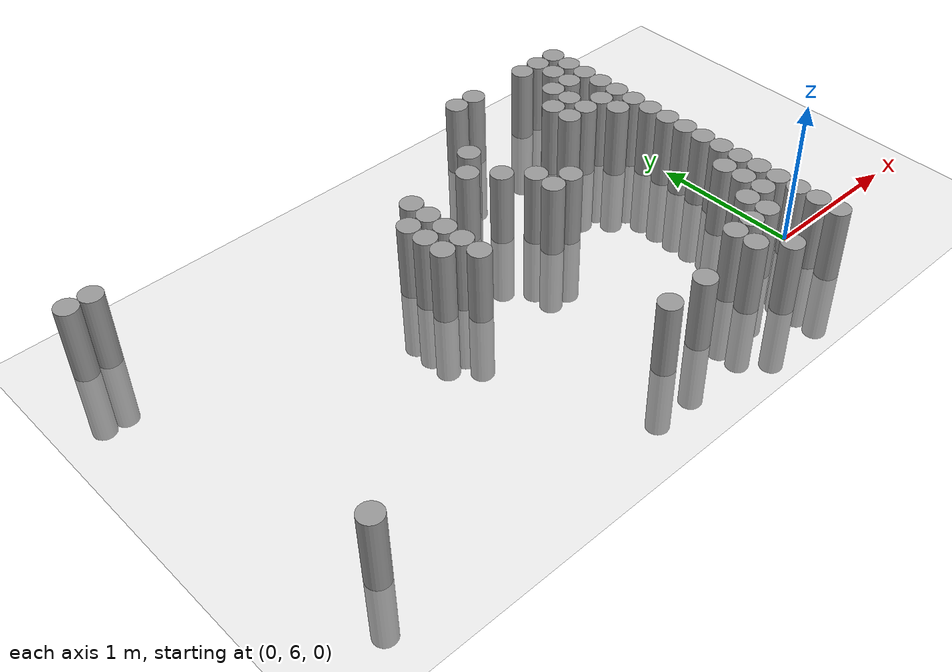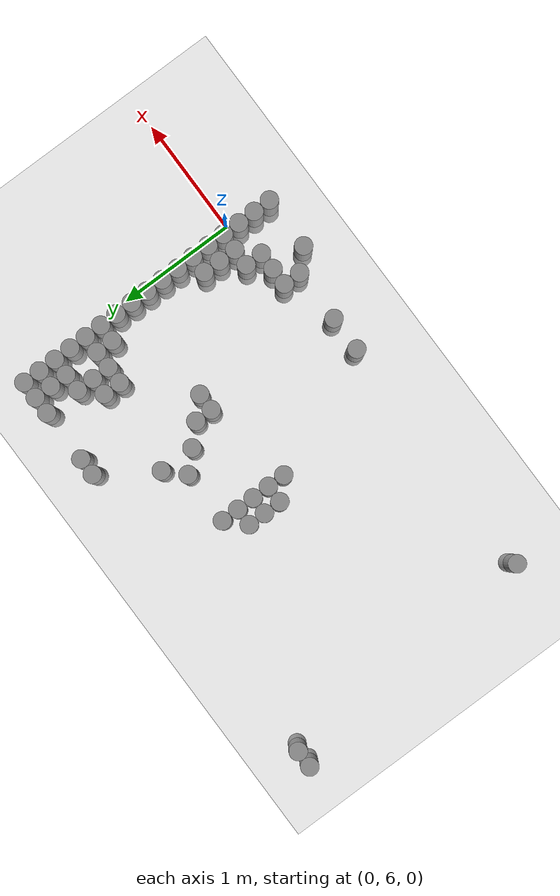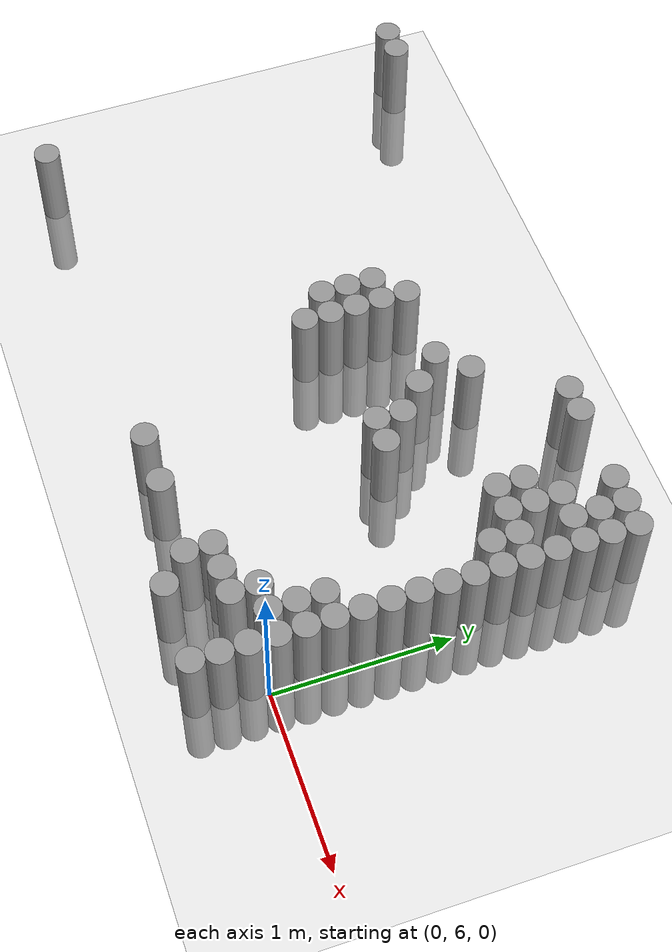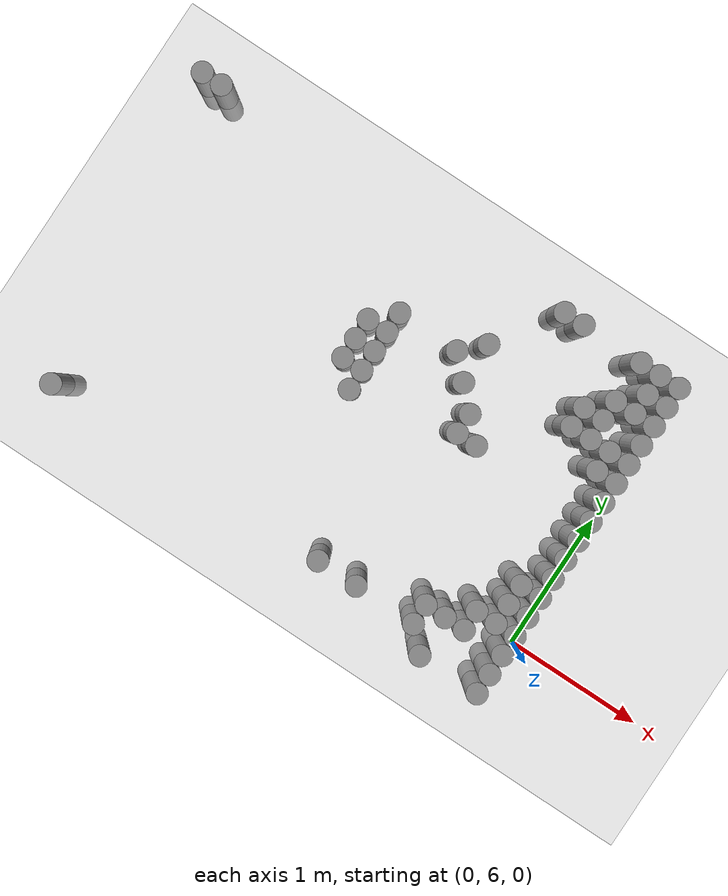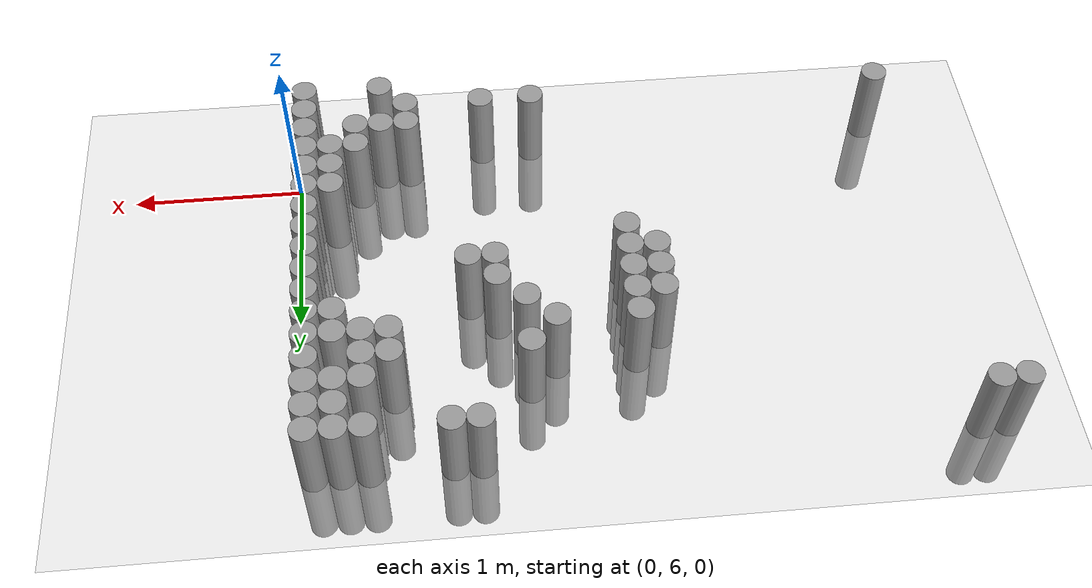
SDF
<sdf version="1.6">
 <world name="default">
  <model name="ground_plane">
   <static>1</static>
   <static>1</static>
   <link name="link">
    <collision name="collision">
     <geometry><plane><normal>0 0 1</normal><size>100 100</size></plane></geometry>
     <surface><friction><ode><mu>100</mu><mu2>50</mu2></ode></friction></surface>
    </collision>
    <visual name="visual">
     <cast_shadows>0</cast_shadows>
     <geometry><plane><normal>0 0 1</normal><size>100 100</size></plane></geometry>
     <material>
      <script><uri>file://media/materials/scripts/gazebo.material</uri><name>Gazebo/Grey</name></script>
     </material>
    </visual>
   </link>
  </model>
  <model name="unit_cylinder_159">
   <static>1</static>
   <pose>-3.825000 8.025000 0.000000 0.000000 0.000000 0.000000</pose>
   <link name="link">
    <inertial>
     <mass>1</mass>
     <inertia><ixx>0.145833</ixx><ixy>0</ixy><ixz>0</ixz><iyy>0.145833</iyy><iyz>0</iyz><izz>0.125</izz></inertia>
    </inertial>
    <collision name="collision">
     <geometry><cylinder><radius>0.075000</radius><length>1</length></cylinder></geometry>
    </collision>
    <visual name="visual">
     <geometry><cylinder><radius>0.075000</radius><length>1</length></cylinder></geometry>
     <material>
      <script><name>Gazebo/Grey</name><uri>file://media/materials/scripts/gazebo.material</uri></script>
     </material>
    </visual>
   </link>
  </model>
  <model name="unit_cylinder_165">
   <static>1</static>
   <pose>-3.675000 8.025000 0.000000 0.000000 0.000000 0.000000</pose>
   <link name="link">
    <inertial>
     <mass>1</mass>
     <inertia><ixx>0.145833</ixx><ixy>0</ixy><ixz>0</ixz><iyy>0.145833</iyy><iyz>0</iyz><izz>0.125</izz></inertia>
    </inertial>
    <collision name="collision">
     <geometry><cylinder><radius>0.075000</radius><length>1</length></cylinder></geometry>
    </collision>
    <visual name="visual">
     <geometry><cylinder><radius>0.075000</radius><length>1</length></cylinder></geometry>
     <material>
      <script><name>Gazebo/Grey</name><uri>file://media/materials/scripts/gazebo.material</uri></script>
     </material>
    </visual>
   </link>
  </model>
  <model name="unit_cylinder_172">
   <static>1</static>
   <pose>-3.525000 5.775000 0.000000 0.000000 0.000000 0.000000</pose>
   <link name="link">
    <inertial>
     <mass>1</mass>
     <inertia><ixx>0.145833</ixx><ixy>0</ixy><ixz>0</ixz><iyy>0.145833</iyy><iyz>0</iyz><izz>0.125</izz></inertia>
    </inertial>
    <collision name="collision">
     <geometry><cylinder><radius>0.075000</radius><length>1</length></cylinder></geometry>
    </collision>
    <visual name="visual">
     <geometry><cylinder><radius>0.075000</radius><length>1</length></cylinder></geometry>
     <material>
      <script><name>Gazebo/Grey</name><uri>file://media/materials/scripts/gazebo.material</uri></script>
     </material>
    </visual>
   </link>
  </model>
  <model name="unit_cylinder_193">
   <static>1</static>
   <pose>-2.025000 6.975000 0.000000 0.000000 0.000000 0.000000</pose>
   <link name="link">
    <inertial>
     <mass>1</mass>
     <inertia><ixx>0.145833</ixx><ixy>0</ixy><ixz>0</ixz><iyy>0.145833</iyy><iyz>0</iyz><izz>0.125</izz></inertia>
    </inertial>
    <collision name="collision">
     <geometry><cylinder><radius>0.075000</radius><length>1</length></cylinder></geometry>
    </collision>
    <visual name="visual">
     <geometry><cylinder><radius>0.075000</radius><length>1</length></cylinder></geometry>
     <material>
      <script><name>Gazebo/Grey</name><uri>file://media/materials/scripts/gazebo.material</uri></script>
     </material>
    </visual>
   </link>
  </model>
  <model name="unit_cylinder_194">
   <static>1</static>
   <pose>-2.025000 7.125000 0.000000 0.000000 0.000000 0.000000</pose>
   <link name="link">
    <inertial>
     <mass>1</mass>
     <inertia><ixx>0.145833</ixx><ixy>0</ixy><ixz>0</ixz><iyy>0.145833</iyy><iyz>0</iyz><izz>0.125</izz></inertia>
    </inertial>
    <collision name="collision">
     <geometry><cylinder><radius>0.075000</radius><length>1</length></cylinder></geometry>
    </collision>
    <visual name="visual">
     <geometry><cylinder><radius>0.075000</radius><length>1</length></cylinder></geometry>
     <material>
      <script><name>Gazebo/Grey</name><uri>file://media/materials/scripts/gazebo.material</uri></script>
     </material>
    </visual>
   </link>
  </model>
  <model name="unit_cylinder_195">
   <static>1</static>
   <pose>-2.025000 7.275000 0.000000 0.000000 0.000000 0.000000</pose>
   <link name="link">
    <inertial>
     <mass>1</mass>
     <inertia><ixx>0.145833</ixx><ixy>0</ixy><ixz>0</ixz><iyy>0.145833</iyy><iyz>0</iyz><izz>0.125</izz></inertia>
    </inertial>
    <collision name="collision">
     <geometry><cylinder><radius>0.075000</radius><length>1</length></cylinder></geometry>
    </collision>
    <visual name="visual">
     <geometry><cylinder><radius>0.075000</radius><length>1</length></cylinder></geometry>
     <material>
      <script><name>Gazebo/Grey</name><uri>file://media/materials/scripts/gazebo.material</uri></script>
     </material>
    </visual>
   </link>
  </model>
  <model name="unit_cylinder_196">
   <static>1</static>
   <pose>-1.875000 6.825000 0.000000 0.000000 0.000000 0.000000</pose>
   <link name="link">
    <inertial>
     <mass>1</mass>
     <inertia><ixx>0.145833</ixx><ixy>0</ixy><ixz>0</ixz><iyy>0.145833</iyy><iyz>0</iyz><izz>0.125</izz></inertia>
    </inertial>
    <collision name="collision">
     <geometry><cylinder><radius>0.075000</radius><length>1</length></cylinder></geometry>
    </collision>
    <visual name="visual">
     <geometry><cylinder><radius>0.075000</radius><length>1</length></cylinder></geometry>
     <material>
      <script><name>Gazebo/Grey</name><uri>file://media/materials/scripts/gazebo.material</uri></script>
     </material>
    </visual>
   </link>
  </model>
  <model name="unit_cylinder_197">
   <static>1</static>
   <pose>-1.875000 6.975000 0.000000 0.000000 0.000000 0.000000</pose>
   <link name="link">
    <inertial>
     <mass>1</mass>
     <inertia><ixx>0.145833</ixx><ixy>0</ixy><ixz>0</ixz><iyy>0.145833</iyy><iyz>0</iyz><izz>0.125</izz></inertia>
    </inertial>
    <collision name="collision">
     <geometry><cylinder><radius>0.075000</radius><length>1</length></cylinder></geometry>
    </collision>
    <visual name="visual">
     <geometry><cylinder><radius>0.075000</radius><length>1</length></cylinder></geometry>
     <material>
      <script><name>Gazebo/Grey</name><uri>file://media/materials/scripts/gazebo.material</uri></script>
     </material>
    </visual>
   </link>
  </model>
  <model name="unit_cylinder_198">
   <static>1</static>
   <pose>-1.875000 7.125000 0.000000 0.000000 0.000000 0.000000</pose>
   <link name="link">
    <inertial>
     <mass>1</mass>
     <inertia><ixx>0.145833</ixx><ixy>0</ixy><ixz>0</ixz><iyy>0.145833</iyy><iyz>0</iyz><izz>0.125</izz></inertia>
    </inertial>
    <collision name="collision">
     <geometry><cylinder><radius>0.075000</radius><length>1</length></cylinder></geometry>
    </collision>
    <visual name="visual">
     <geometry><cylinder><radius>0.075000</radius><length>1</length></cylinder></geometry>
     <material>
      <script><name>Gazebo/Grey</name><uri>file://media/materials/scripts/gazebo.material</uri></script>
     </material>
    </visual>
   </link>
  </model>
  <model name="unit_cylinder_199">
   <static>1</static>
   <pose>-1.875000 7.275000 0.000000 0.000000 0.000000 0.000000</pose>
   <link name="link">
    <inertial>
     <mass>1</mass>
     <inertia><ixx>0.145833</ixx><ixy>0</ixy><ixz>0</ixz><iyy>0.145833</iyy><iyz>0</iyz><izz>0.125</izz></inertia>
    </inertial>
    <collision name="collision">
     <geometry><cylinder><radius>0.075000</radius><length>1</length></cylinder></geometry>
    </collision>
    <visual name="visual">
     <geometry><cylinder><radius>0.075000</radius><length>1</length></cylinder></geometry>
     <material>
      <script><name>Gazebo/Grey</name><uri>file://media/materials/scripts/gazebo.material</uri></script>
     </material>
    </visual>
   </link>
  </model>
  <model name="unit_cylinder_200">
   <static>1</static>
   <pose>-1.875000 7.425000 0.000000 0.000000 0.000000 0.000000</pose>
   <link name="link">
    <inertial>
     <mass>1</mass>
     <inertia><ixx>0.145833</ixx><ixy>0</ixy><ixz>0</ixz><iyy>0.145833</iyy><iyz>0</iyz><izz>0.125</izz></inertia>
    </inertial>
    <collision name="collision">
     <geometry><cylinder><radius>0.075000</radius><length>1</length></cylinder></geometry>
    </collision>
    <visual name="visual">
     <geometry><cylinder><radius>0.075000</radius><length>1</length></cylinder></geometry>
     <material>
      <script><name>Gazebo/Grey</name><uri>file://media/materials/scripts/gazebo.material</uri></script>
     </material>
    </visual>
   </link>
  </model>
  <model name="unit_cylinder_203">
   <static>1</static>
   <pose>-1.425000 5.775000 0.000000 0.000000 0.000000 0.000000</pose>
   <link name="link">
    <inertial>
     <mass>1</mass>
     <inertia><ixx>0.145833</ixx><ixy>0</ixy><ixz>0</ixz><iyy>0.145833</iyy><iyz>0</iyz><izz>0.125</izz></inertia>
    </inertial>
    <collision name="collision">
     <geometry><cylinder><radius>0.075000</radius><length>1</length></cylinder></geometry>
    </collision>
    <visual name="visual">
     <geometry><cylinder><radius>0.075000</radius><length>1</length></cylinder></geometry>
     <material>
      <script><name>Gazebo/Grey</name><uri>file://media/materials/scripts/gazebo.material</uri></script>
     </material>
    </visual>
   </link>
  </model>
  <model name="unit_cylinder_204">
   <static>1</static>
   <pose>-1.425000 7.425000 0.000000 0.000000 0.000000 0.000000</pose>
   <link name="link">
    <inertial>
     <mass>1</mass>
     <inertia><ixx>0.145833</ixx><ixy>0</ixy><ixz>0</ixz><iyy>0.145833</iyy><iyz>0</iyz><izz>0.125</izz></inertia>
    </inertial>
    <collision name="collision">
     <geometry><cylinder><radius>0.075000</radius><length>1</length></cylinder></geometry>
    </collision>
    <visual name="visual">
     <geometry><cylinder><radius>0.075000</radius><length>1</length></cylinder></geometry>
     <material>
      <script><name>Gazebo/Grey</name><uri>file://media/materials/scripts/gazebo.material</uri></script>
     </material>
    </visual>
   </link>
  </model>
  <model name="unit_cylinder_206">
   <static>1</static>
   <pose>-1.275000 7.275000 0.000000 0.000000 0.000000 0.000000</pose>
   <link name="link">
    <inertial>
     <mass>1</mass>
     <inertia><ixx>0.145833</ixx><ixy>0</ixy><ixz>0</ixz><iyy>0.145833</iyy><iyz>0</iyz><izz>0.125</izz></inertia>
    </inertial>
    <collision name="collision">
     <geometry><cylinder><radius>0.075000</radius><length>1</length></cylinder></geometry>
    </collision>
    <visual name="visual">
     <geometry><cylinder><radius>0.075000</radius><length>1</length></cylinder></geometry>
     <material>
      <script><name>Gazebo/Grey</name><uri>file://media/materials/scripts/gazebo.material</uri></script>
     </material>
    </visual>
   </link>
  </model>
  <model name="unit_cylinder_207">
   <static>1</static>
   <pose>-1.275000 7.575000 0.000000 0.000000 0.000000 0.000000</pose>
   <link name="link">
    <inertial>
     <mass>1</mass>
     <inertia><ixx>0.145833</ixx><ixy>0</ixy><ixz>0</ixz><iyy>0.145833</iyy><iyz>0</iyz><izz>0.125</izz></inertia>
    </inertial>
    <collision name="collision">
     <geometry><cylinder><radius>0.075000</radius><length>1</length></cylinder></geometry>
    </collision>
    <visual name="visual">
     <geometry><cylinder><radius>0.075000</radius><length>1</length></cylinder></geometry>
     <material>
      <script><name>Gazebo/Grey</name><uri>file://media/materials/scripts/gazebo.material</uri></script>
     </material>
    </visual>
   </link>
  </model>
  <model name="unit_cylinder_208">
   <static>1</static>
   <pose>-1.125000 5.775000 0.000000 0.000000 0.000000 0.000000</pose>
   <link name="link">
    <inertial>
     <mass>1</mass>
     <inertia><ixx>0.145833</ixx><ixy>0</ixy><ixz>0</ixz><iyy>0.145833</iyy><iyz>0</iyz><izz>0.125</izz></inertia>
    </inertial>
    <collision name="collision">
     <geometry><cylinder><radius>0.075000</radius><length>1</length></cylinder></geometry>
    </collision>
    <visual name="visual">
     <geometry><cylinder><radius>0.075000</radius><length>1</length></cylinder></geometry>
     <material>
      <script><name>Gazebo/Grey</name><uri>file://media/materials/scripts/gazebo.material</uri></script>
     </material>
    </visual>
   </link>
  </model>
  <model name="unit_cylinder_209">
   <static>1</static>
   <pose>-1.125000 6.975000 0.000000 0.000000 0.000000 0.000000</pose>
   <link name="link">
    <inertial>
     <mass>1</mass>
     <inertia><ixx>0.145833</ixx><ixy>0</ixy><ixz>0</ixz><iyy>0.145833</iyy><iyz>0</iyz><izz>0.125</izz></inertia>
    </inertial>
    <collision name="collision">
     <geometry><cylinder><radius>0.075000</radius><length>1</length></cylinder></geometry>
    </collision>
    <visual name="visual">
     <geometry><cylinder><radius>0.075000</radius><length>1</length></cylinder></geometry>
     <material>
      <script><name>Gazebo/Grey</name><uri>file://media/materials/scripts/gazebo.material</uri></script>
     </material>
    </visual>
   </link>
  </model>
  <model name="unit_cylinder_210">
   <static>1</static>
   <pose>-1.125000 7.125000 0.000000 0.000000 0.000000 0.000000</pose>
   <link name="link">
    <inertial>
     <mass>1</mass>
     <inertia><ixx>0.145833</ixx><ixy>0</ixy><ixz>0</ixz><iyy>0.145833</iyy><iyz>0</iyz><izz>0.125</izz></inertia>
    </inertial>
    <collision name="collision">
     <geometry><cylinder><radius>0.075000</radius><length>1</length></cylinder></geometry>
    </collision>
    <visual name="visual">
     <geometry><cylinder><radius>0.075000</radius><length>1</length></cylinder></geometry>
     <material>
      <script><name>Gazebo/Grey</name><uri>file://media/materials/scripts/gazebo.material</uri></script>
     </material>
    </visual>
   </link>
  </model>
  <model name="unit_cylinder_213">
   <static>1</static>
   <pose>-0.975000 6.975000 0.000000 0.000000 0.000000 0.000000</pose>
   <link name="link">
    <inertial>
     <mass>1</mass>
     <inertia><ixx>0.145833</ixx><ixy>0</ixy><ixz>0</ixz><iyy>0.145833</iyy><iyz>0</iyz><izz>0.125</izz></inertia>
    </inertial>
    <collision name="collision">
     <geometry><cylinder><radius>0.075000</radius><length>1</length></cylinder></geometry>
    </collision>
    <visual name="visual">
     <geometry><cylinder><radius>0.075000</radius><length>1</length></cylinder></geometry>
     <material>
      <script><name>Gazebo/Grey</name><uri>file://media/materials/scripts/gazebo.material</uri></script>
     </material>
    </visual>
   </link>
  </model>
  <model name="unit_cylinder_214">
   <static>1</static>
   <pose>-0.975000 8.025000 0.000000 0.000000 0.000000 0.000000</pose>
   <link name="link">
    <inertial>
     <mass>1</mass>
     <inertia><ixx>0.145833</ixx><ixy>0</ixy><ixz>0</ixz><iyy>0.145833</iyy><iyz>0</iyz><izz>0.125</izz></inertia>
    </inertial>
    <collision name="collision">
     <geometry><cylinder><radius>0.075000</radius><length>1</length></cylinder></geometry>
    </collision>
    <visual name="visual">
     <geometry><cylinder><radius>0.075000</radius><length>1</length></cylinder></geometry>
     <material>
      <script><name>Gazebo/Grey</name><uri>file://media/materials/scripts/gazebo.material</uri></script>
     </material>
    </visual>
   </link>
  </model>
  <model name="unit_cylinder_217">
   <static>1</static>
   <pose>-0.825000 8.025000 0.000000 0.000000 0.000000 0.000000</pose>
   <link name="link">
    <inertial>
     <mass>1</mass>
     <inertia><ixx>0.145833</ixx><ixy>0</ixy><ixz>0</ixz><iyy>0.145833</iyy><iyz>0</iyz><izz>0.125</izz></inertia>
    </inertial>
    <collision name="collision">
     <geometry><cylinder><radius>0.075000</radius><length>1</length></cylinder></geometry>
    </collision>
    <visual name="visual">
     <geometry><cylinder><radius>0.075000</radius><length>1</length></cylinder></geometry>
     <material>
      <script><name>Gazebo/Grey</name><uri>file://media/materials/scripts/gazebo.material</uri></script>
     </material>
    </visual>
   </link>
  </model>
  <model name="unit_cylinder_220">
   <static>1</static>
   <pose>-0.675000 5.775000 0.000000 0.000000 0.000000 0.000000</pose>
   <link name="link">
    <inertial>
     <mass>1</mass>
     <inertia><ixx>0.145833</ixx><ixy>0</ixy><ixz>0</ixz><iyy>0.145833</iyy><iyz>0</iyz><izz>0.125</izz></inertia>
    </inertial>
    <collision name="collision">
     <geometry><cylinder><radius>0.075000</radius><length>1</length></cylinder></geometry>
    </collision>
    <visual name="visual">
     <geometry><cylinder><radius>0.075000</radius><length>1</length></cylinder></geometry>
     <material>
      <script><name>Gazebo/Grey</name><uri>file://media/materials/scripts/gazebo.material</uri></script>
     </material>
    </visual>
   </link>
  </model>
  <model name="unit_cylinder_221">
   <static>1</static>
   <pose>-0.675000 5.925000 0.000000 0.000000 0.000000 0.000000</pose>
   <link name="link">
    <inertial>
     <mass>1</mass>
     <inertia><ixx>0.145833</ixx><ixy>0</ixy><ixz>0</ixz><iyy>0.145833</iyy><iyz>0</iyz><izz>0.125</izz></inertia>
    </inertial>
    <collision name="collision">
     <geometry><cylinder><radius>0.075000</radius><length>1</length></cylinder></geometry>
    </collision>
    <visual name="visual">
     <geometry><cylinder><radius>0.075000</radius><length>1</length></cylinder></geometry>
     <material>
      <script><name>Gazebo/Grey</name><uri>file://media/materials/scripts/gazebo.material</uri></script>
     </material>
    </visual>
   </link>
  </model>
  <model name="unit_cylinder_227">
   <static>1</static>
   <pose>-0.525000 5.625000 0.000000 0.000000 0.000000 0.000000</pose>
   <link name="link">
    <inertial>
     <mass>1</mass>
     <inertia><ixx>0.145833</ixx><ixy>0</ixy><ixz>0</ixz><iyy>0.145833</iyy><iyz>0</iyz><izz>0.125</izz></inertia>
    </inertial>
    <collision name="collision">
     <geometry><cylinder><radius>0.075000</radius><length>1</length></cylinder></geometry>
    </collision>
    <visual name="visual">
     <geometry><cylinder><radius>0.075000</radius><length>1</length></cylinder></geometry>
     <material>
      <script><name>Gazebo/Grey</name><uri>file://media/materials/scripts/gazebo.material</uri></script>
     </material>
    </visual>
   </link>
  </model>
  <model name="unit_cylinder_228">
   <static>1</static>
   <pose>-0.525000 5.925000 0.000000 0.000000 0.000000 0.000000</pose>
   <link name="link">
    <inertial>
     <mass>1</mass>
     <inertia><ixx>0.145833</ixx><ixy>0</ixy><ixz>0</ixz><iyy>0.145833</iyy><iyz>0</iyz><izz>0.125</izz></inertia>
    </inertial>
    <collision name="collision">
     <geometry><cylinder><radius>0.075000</radius><length>1</length></cylinder></geometry>
    </collision>
    <visual name="visual">
     <geometry><cylinder><radius>0.075000</radius><length>1</length></cylinder></geometry>
     <material>
      <script><name>Gazebo/Grey</name><uri>file://media/materials/scripts/gazebo.material</uri></script>
     </material>
    </visual>
   </link>
  </model>
  <model name="unit_cylinder_229">
   <static>1</static>
   <pose>-0.525000 7.425000 0.000000 0.000000 0.000000 0.000000</pose>
   <link name="link">
    <inertial>
     <mass>1</mass>
     <inertia><ixx>0.145833</ixx><ixy>0</ixy><ixz>0</ixz><iyy>0.145833</iyy><iyz>0</iyz><izz>0.125</izz></inertia>
    </inertial>
    <collision name="collision">
     <geometry><cylinder><radius>0.075000</radius><length>1</length></cylinder></geometry>
    </collision>
    <visual name="visual">
     <geometry><cylinder><radius>0.075000</radius><length>1</length></cylinder></geometry>
     <material>
      <script><name>Gazebo/Grey</name><uri>file://media/materials/scripts/gazebo.material</uri></script>
     </material>
    </visual>
   </link>
  </model>
  <model name="unit_cylinder_230">
   <static>1</static>
   <pose>-0.525000 7.575000 0.000000 0.000000 0.000000 0.000000</pose>
   <link name="link">
    <inertial>
     <mass>1</mass>
     <inertia><ixx>0.145833</ixx><ixy>0</ixy><ixz>0</ixz><iyy>0.145833</iyy><iyz>0</iyz><izz>0.125</izz></inertia>
    </inertial>
    <collision name="collision">
     <geometry><cylinder><radius>0.075000</radius><length>1</length></cylinder></geometry>
    </collision>
    <visual name="visual">
     <geometry><cylinder><radius>0.075000</radius><length>1</length></cylinder></geometry>
     <material>
      <script><name>Gazebo/Grey</name><uri>file://media/materials/scripts/gazebo.material</uri></script>
     </material>
    </visual>
   </link>
  </model>
  <model name="unit_cylinder_236">
   <static>1</static>
   <pose>-0.375000 5.925000 0.000000 0.000000 0.000000 0.000000</pose>
   <link name="link">
    <inertial>
     <mass>1</mass>
     <inertia><ixx>0.145833</ixx><ixy>0</ixy><ixz>0</ixz><iyy>0.145833</iyy><iyz>0</iyz><izz>0.125</izz></inertia>
    </inertial>
    <collision name="collision">
     <geometry><cylinder><radius>0.075000</radius><length>1</length></cylinder></geometry>
    </collision>
    <visual name="visual">
     <geometry><cylinder><radius>0.075000</radius><length>1</length></cylinder></geometry>
     <material>
      <script><name>Gazebo/Grey</name><uri>file://media/materials/scripts/gazebo.material</uri></script>
     </material>
    </visual>
   </link>
  </model>
  <model name="unit_cylinder_237">
   <static>1</static>
   <pose>-0.375000 6.075000 0.000000 0.000000 0.000000 0.000000</pose>
   <link name="link">
    <inertial>
     <mass>1</mass>
     <inertia><ixx>0.145833</ixx><ixy>0</ixy><ixz>0</ixz><iyy>0.145833</iyy><iyz>0</iyz><izz>0.125</izz></inertia>
    </inertial>
    <collision name="collision">
     <geometry><cylinder><radius>0.075000</radius><length>1</length></cylinder></geometry>
    </collision>
    <visual name="visual">
     <geometry><cylinder><radius>0.075000</radius><length>1</length></cylinder></geometry>
     <material>
      <script><name>Gazebo/Grey</name><uri>file://media/materials/scripts/gazebo.material</uri></script>
     </material>
    </visual>
   </link>
  </model>
  <model name="unit_cylinder_238">
   <static>1</static>
   <pose>-0.375000 7.425000 0.000000 0.000000 0.000000 0.000000</pose>
   <link name="link">
    <inertial>
     <mass>1</mass>
     <inertia><ixx>0.145833</ixx><ixy>0</ixy><ixz>0</ixz><iyy>0.145833</iyy><iyz>0</iyz><izz>0.125</izz></inertia>
    </inertial>
    <collision name="collision">
     <geometry><cylinder><radius>0.075000</radius><length>1</length></cylinder></geometry>
    </collision>
    <visual name="visual">
     <geometry><cylinder><radius>0.075000</radius><length>1</length></cylinder></geometry>
     <material>
      <script><name>Gazebo/Grey</name><uri>file://media/materials/scripts/gazebo.material</uri></script>
     </material>
    </visual>
   </link>
  </model>
  <model name="unit_cylinder_239">
   <static>1</static>
   <pose>-0.375000 7.575000 0.000000 0.000000 0.000000 0.000000</pose>
   <link name="link">
    <inertial>
     <mass>1</mass>
     <inertia><ixx>0.145833</ixx><ixy>0</ixy><ixz>0</ixz><iyy>0.145833</iyy><iyz>0</iyz><izz>0.125</izz></inertia>
    </inertial>
    <collision name="collision">
     <geometry><cylinder><radius>0.075000</radius><length>1</length></cylinder></geometry>
    </collision>
    <visual name="visual">
     <geometry><cylinder><radius>0.075000</radius><length>1</length></cylinder></geometry>
     <material>
      <script><name>Gazebo/Grey</name><uri>file://media/materials/scripts/gazebo.material</uri></script>
     </material>
    </visual>
   </link>
  </model>
  <model name="unit_cylinder_240">
   <static>1</static>
   <pose>-0.375000 7.725000 0.000000 0.000000 0.000000 0.000000</pose>
   <link name="link">
    <inertial>
     <mass>1</mass>
     <inertia><ixx>0.145833</ixx><ixy>0</ixy><ixz>0</ixz><iyy>0.145833</iyy><iyz>0</iyz><izz>0.125</izz></inertia>
    </inertial>
    <collision name="collision">
     <geometry><cylinder><radius>0.075000</radius><length>1</length></cylinder></geometry>
    </collision>
    <visual name="visual">
     <geometry><cylinder><radius>0.075000</radius><length>1</length></cylinder></geometry>
     <material>
      <script><name>Gazebo/Grey</name><uri>file://media/materials/scripts/gazebo.material</uri></script>
     </material>
    </visual>
   </link>
  </model>
  <model name="unit_cylinder_241">
   <static>1</static>
   <pose>-0.375000 8.025000 0.000000 0.000000 0.000000 0.000000</pose>
   <link name="link">
    <inertial>
     <mass>1</mass>
     <inertia><ixx>0.145833</ixx><ixy>0</ixy><ixz>0</ixz><iyy>0.145833</iyy><iyz>0</iyz><izz>0.125</izz></inertia>
    </inertial>
    <collision name="collision">
     <geometry><cylinder><radius>0.075000</radius><length>1</length></cylinder></geometry>
    </collision>
    <visual name="visual">
     <geometry><cylinder><radius>0.075000</radius><length>1</length></cylinder></geometry>
     <material>
      <script><name>Gazebo/Grey</name><uri>file://media/materials/scripts/gazebo.material</uri></script>
     </material>
    </visual>
   </link>
  </model>
  <model name="unit_cylinder_252">
   <static>1</static>
   <pose>-0.225000 6.075000 0.000000 0.000000 0.000000 0.000000</pose>
   <link name="link">
    <inertial>
     <mass>1</mass>
     <inertia><ixx>0.145833</ixx><ixy>0</ixy><ixz>0</ixz><iyy>0.145833</iyy><iyz>0</iyz><izz>0.125</izz></inertia>
    </inertial>
    <collision name="collision">
     <geometry><cylinder><radius>0.075000</radius><length>1</length></cylinder></geometry>
    </collision>
    <visual name="visual">
     <geometry><cylinder><radius>0.075000</radius><length>1</length></cylinder></geometry>
     <material>
      <script><name>Gazebo/Grey</name><uri>file://media/materials/scripts/gazebo.material</uri></script>
     </material>
    </visual>
   </link>
  </model>
  <model name="unit_cylinder_253">
   <static>1</static>
   <pose>-0.225000 6.225000 0.000000 0.000000 0.000000 0.000000</pose>
   <link name="link">
    <inertial>
     <mass>1</mass>
     <inertia><ixx>0.145833</ixx><ixy>0</ixy><ixz>0</ixz><iyy>0.145833</iyy><iyz>0</iyz><izz>0.125</izz></inertia>
    </inertial>
    <collision name="collision">
     <geometry><cylinder><radius>0.075000</radius><length>1</length></cylinder></geometry>
    </collision>
    <visual name="visual">
     <geometry><cylinder><radius>0.075000</radius><length>1</length></cylinder></geometry>
     <material>
      <script><name>Gazebo/Grey</name><uri>file://media/materials/scripts/gazebo.material</uri></script>
     </material>
    </visual>
   </link>
  </model>
  <model name="unit_cylinder_254">
   <static>1</static>
   <pose>-0.225000 6.375000 0.000000 0.000000 0.000000 0.000000</pose>
   <link name="link">
    <inertial>
     <mass>1</mass>
     <inertia><ixx>0.145833</ixx><ixy>0</ixy><ixz>0</ixz><iyy>0.145833</iyy><iyz>0</iyz><izz>0.125</izz></inertia>
    </inertial>
    <collision name="collision">
     <geometry><cylinder><radius>0.075000</radius><length>1</length></cylinder></geometry>
    </collision>
    <visual name="visual">
     <geometry><cylinder><radius>0.075000</radius><length>1</length></cylinder></geometry>
     <material>
      <script><name>Gazebo/Grey</name><uri>file://media/materials/scripts/gazebo.material</uri></script>
     </material>
    </visual>
   </link>
  </model>
  <model name="unit_cylinder_255">
   <static>1</static>
   <pose>-0.225000 7.275000 0.000000 0.000000 0.000000 0.000000</pose>
   <link name="link">
    <inertial>
     <mass>1</mass>
     <inertia><ixx>0.145833</ixx><ixy>0</ixy><ixz>0</ixz><iyy>0.145833</iyy><iyz>0</iyz><izz>0.125</izz></inertia>
    </inertial>
    <collision name="collision">
     <geometry><cylinder><radius>0.075000</radius><length>1</length></cylinder></geometry>
    </collision>
    <visual name="visual">
     <geometry><cylinder><radius>0.075000</radius><length>1</length></cylinder></geometry>
     <material>
      <script><name>Gazebo/Grey</name><uri>file://media/materials/scripts/gazebo.material</uri></script>
     </material>
    </visual>
   </link>
  </model>
  <model name="unit_cylinder_256">
   <static>1</static>
   <pose>-0.225000 7.425000 0.000000 0.000000 0.000000 0.000000</pose>
   <link name="link">
    <inertial>
     <mass>1</mass>
     <inertia><ixx>0.145833</ixx><ixy>0</ixy><ixz>0</ixz><iyy>0.145833</iyy><iyz>0</iyz><izz>0.125</izz></inertia>
    </inertial>
    <collision name="collision">
     <geometry><cylinder><radius>0.075000</radius><length>1</length></cylinder></geometry>
    </collision>
    <visual name="visual">
     <geometry><cylinder><radius>0.075000</radius><length>1</length></cylinder></geometry>
     <material>
      <script><name>Gazebo/Grey</name><uri>file://media/materials/scripts/gazebo.material</uri></script>
     </material>
    </visual>
   </link>
  </model>
  <model name="unit_cylinder_257">
   <static>1</static>
   <pose>-0.225000 7.725000 0.000000 0.000000 0.000000 0.000000</pose>
   <link name="link">
    <inertial>
     <mass>1</mass>
     <inertia><ixx>0.145833</ixx><ixy>0</ixy><ixz>0</ixz><iyy>0.145833</iyy><iyz>0</iyz><izz>0.125</izz></inertia>
    </inertial>
    <collision name="collision">
     <geometry><cylinder><radius>0.075000</radius><length>1</length></cylinder></geometry>
    </collision>
    <visual name="visual">
     <geometry><cylinder><radius>0.075000</radius><length>1</length></cylinder></geometry>
     <material>
      <script><name>Gazebo/Grey</name><uri>file://media/materials/scripts/gazebo.material</uri></script>
     </material>
    </visual>
   </link>
  </model>
  <model name="unit_cylinder_258">
   <static>1</static>
   <pose>-0.225000 7.875000 0.000000 0.000000 0.000000 0.000000</pose>
   <link name="link">
    <inertial>
     <mass>1</mass>
     <inertia><ixx>0.145833</ixx><ixy>0</ixy><ixz>0</ixz><iyy>0.145833</iyy><iyz>0</iyz><izz>0.125</izz></inertia>
    </inertial>
    <collision name="collision">
     <geometry><cylinder><radius>0.075000</radius><length>1</length></cylinder></geometry>
    </collision>
    <visual name="visual">
     <geometry><cylinder><radius>0.075000</radius><length>1</length></cylinder></geometry>
     <material>
      <script><name>Gazebo/Grey</name><uri>file://media/materials/scripts/gazebo.material</uri></script>
     </material>
    </visual>
   </link>
  </model>
  <model name="unit_cylinder_259">
   <static>1</static>
   <pose>-0.225000 8.025000 0.000000 0.000000 0.000000 0.000000</pose>
   <link name="link">
    <inertial>
     <mass>1</mass>
     <inertia><ixx>0.145833</ixx><ixy>0</ixy><ixz>0</ixz><iyy>0.145833</iyy><iyz>0</iyz><izz>0.125</izz></inertia>
    </inertial>
    <collision name="collision">
     <geometry><cylinder><radius>0.075000</radius><length>1</length></cylinder></geometry>
    </collision>
    <visual name="visual">
     <geometry><cylinder><radius>0.075000</radius><length>1</length></cylinder></geometry>
     <material>
      <script><name>Gazebo/Grey</name><uri>file://media/materials/scripts/gazebo.material</uri></script>
     </material>
    </visual>
   </link>
  </model>
  <model name="unit_cylinder_264">
   <static>1</static>
   <pose>-0.075000 5.625000 0.000000 0.000000 0.000000 0.000000</pose>
   <link name="link">
    <inertial>
     <mass>1</mass>
     <inertia><ixx>0.145833</ixx><ixy>0</ixy><ixz>0</ixz><iyy>0.145833</iyy><iyz>0</iyz><izz>0.125</izz></inertia>
    </inertial>
    <collision name="collision">
     <geometry><cylinder><radius>0.075000</radius><length>1</length></cylinder></geometry>
    </collision>
    <visual name="visual">
     <geometry><cylinder><radius>0.075000</radius><length>1</length></cylinder></geometry>
     <material>
      <script><name>Gazebo/Grey</name><uri>file://media/materials/scripts/gazebo.material</uri></script>
     </material>
    </visual>
   </link>
  </model>
  <model name="unit_cylinder_265">
   <static>1</static>
   <pose>-0.075000 5.775000 0.000000 0.000000 0.000000 0.000000</pose>
   <link name="link">
    <inertial>
     <mass>1</mass>
     <inertia><ixx>0.145833</ixx><ixy>0</ixy><ixz>0</ixz><iyy>0.145833</iyy><iyz>0</iyz><izz>0.125</izz></inertia>
    </inertial>
    <collision name="collision">
     <geometry><cylinder><radius>0.075000</radius><length>1</length></cylinder></geometry>
    </collision>
    <visual name="visual">
     <geometry><cylinder><radius>0.075000</radius><length>1</length></cylinder></geometry>
     <material>
      <script><name>Gazebo/Grey</name><uri>file://media/materials/scripts/gazebo.material</uri></script>
     </material>
    </visual>
   </link>
  </model>
  <model name="unit_cylinder_266">
   <static>1</static>
   <pose>-0.075000 5.925000 0.000000 0.000000 0.000000 0.000000</pose>
   <link name="link">
    <inertial>
     <mass>1</mass>
     <inertia><ixx>0.145833</ixx><ixy>0</ixy><ixz>0</ixz><iyy>0.145833</iyy><iyz>0</iyz><izz>0.125</izz></inertia>
    </inertial>
    <collision name="collision">
     <geometry><cylinder><radius>0.075000</radius><length>1</length></cylinder></geometry>
    </collision>
    <visual name="visual">
     <geometry><cylinder><radius>0.075000</radius><length>1</length></cylinder></geometry>
     <material>
      <script><name>Gazebo/Grey</name><uri>file://media/materials/scripts/gazebo.material</uri></script>
     </material>
    </visual>
   </link>
  </model>
  <model name="unit_cylinder_267">
   <static>1</static>
   <pose>-0.075000 6.075000 0.000000 0.000000 0.000000 0.000000</pose>
   <link name="link">
    <inertial>
     <mass>1</mass>
     <inertia><ixx>0.145833</ixx><ixy>0</ixy><ixz>0</ixz><iyy>0.145833</iyy><iyz>0</iyz><izz>0.125</izz></inertia>
    </inertial>
    <collision name="collision">
     <geometry><cylinder><radius>0.075000</radius><length>1</length></cylinder></geometry>
    </collision>
    <visual name="visual">
     <geometry><cylinder><radius>0.075000</radius><length>1</length></cylinder></geometry>
     <material>
      <script><name>Gazebo/Grey</name><uri>file://media/materials/scripts/gazebo.material</uri></script>
     </material>
    </visual>
   </link>
  </model>
  <model name="unit_cylinder_268">
   <static>1</static>
   <pose>-0.075000 6.225000 0.000000 0.000000 0.000000 0.000000</pose>
   <link name="link">
    <inertial>
     <mass>1</mass>
     <inertia><ixx>0.145833</ixx><ixy>0</ixy><ixz>0</ixz><iyy>0.145833</iyy><iyz>0</iyz><izz>0.125</izz></inertia>
    </inertial>
    <collision name="collision">
     <geometry><cylinder><radius>0.075000</radius><length>1</length></cylinder></geometry>
    </collision>
    <visual name="visual">
     <geometry><cylinder><radius>0.075000</radius><length>1</length></cylinder></geometry>
     <material>
      <script><name>Gazebo/Grey</name><uri>file://media/materials/scripts/gazebo.material</uri></script>
     </material>
    </visual>
   </link>
  </model>
  <model name="unit_cylinder_269">
   <static>1</static>
   <pose>-0.075000 6.375000 0.000000 0.000000 0.000000 0.000000</pose>
   <link name="link">
    <inertial>
     <mass>1</mass>
     <inertia><ixx>0.145833</ixx><ixy>0</ixy><ixz>0</ixz><iyy>0.145833</iyy><iyz>0</iyz><izz>0.125</izz></inertia>
    </inertial>
    <collision name="collision">
     <geometry><cylinder><radius>0.075000</radius><length>1</length></cylinder></geometry>
    </collision>
    <visual name="visual">
     <geometry><cylinder><radius>0.075000</radius><length>1</length></cylinder></geometry>
     <material>
      <script><name>Gazebo/Grey</name><uri>file://media/materials/scripts/gazebo.material</uri></script>
     </material>
    </visual>
   </link>
  </model>
  <model name="unit_cylinder_270">
   <static>1</static>
   <pose>-0.075000 6.525000 0.000000 0.000000 0.000000 0.000000</pose>
   <link name="link">
    <inertial>
     <mass>1</mass>
     <inertia><ixx>0.145833</ixx><ixy>0</ixy><ixz>0</ixz><iyy>0.145833</iyy><iyz>0</iyz><izz>0.125</izz></inertia>
    </inertial>
    <collision name="collision">
     <geometry><cylinder><radius>0.075000</radius><length>1</length></cylinder></geometry>
    </collision>
    <visual name="visual">
     <geometry><cylinder><radius>0.075000</radius><length>1</length></cylinder></geometry>
     <material>
      <script><name>Gazebo/Grey</name><uri>file://media/materials/scripts/gazebo.material</uri></script>
     </material>
    </visual>
   </link>
  </model>
  <model name="unit_cylinder_271">
   <static>1</static>
   <pose>-0.075000 6.675000 0.000000 0.000000 0.000000 0.000000</pose>
   <link name="link">
    <inertial>
     <mass>1</mass>
     <inertia><ixx>0.145833</ixx><ixy>0</ixy><ixz>0</ixz><iyy>0.145833</iyy><iyz>0</iyz><izz>0.125</izz></inertia>
    </inertial>
    <collision name="collision">
     <geometry><cylinder><radius>0.075000</radius><length>1</length></cylinder></geometry>
    </collision>
    <visual name="visual">
     <geometry><cylinder><radius>0.075000</radius><length>1</length></cylinder></geometry>
     <material>
      <script><name>Gazebo/Grey</name><uri>file://media/materials/scripts/gazebo.material</uri></script>
     </material>
    </visual>
   </link>
  </model>
  <model name="unit_cylinder_272">
   <static>1</static>
   <pose>-0.075000 6.825000 0.000000 0.000000 0.000000 0.000000</pose>
   <link name="link">
    <inertial>
     <mass>1</mass>
     <inertia><ixx>0.145833</ixx><ixy>0</ixy><ixz>0</ixz><iyy>0.145833</iyy><iyz>0</iyz><izz>0.125</izz></inertia>
    </inertial>
    <collision name="collision">
     <geometry><cylinder><radius>0.075000</radius><length>1</length></cylinder></geometry>
    </collision>
    <visual name="visual">
     <geometry><cylinder><radius>0.075000</radius><length>1</length></cylinder></geometry>
     <material>
      <script><name>Gazebo/Grey</name><uri>file://media/materials/scripts/gazebo.material</uri></script>
     </material>
    </visual>
   </link>
  </model>
  <model name="unit_cylinder_273">
   <static>1</static>
   <pose>-0.075000 6.975000 0.000000 0.000000 0.000000 0.000000</pose>
   <link name="link">
    <inertial>
     <mass>1</mass>
     <inertia><ixx>0.145833</ixx><ixy>0</ixy><ixz>0</ixz><iyy>0.145833</iyy><iyz>0</iyz><izz>0.125</izz></inertia>
    </inertial>
    <collision name="collision">
     <geometry><cylinder><radius>0.075000</radius><length>1</length></cylinder></geometry>
    </collision>
    <visual name="visual">
     <geometry><cylinder><radius>0.075000</radius><length>1</length></cylinder></geometry>
     <material>
      <script><name>Gazebo/Grey</name><uri>file://media/materials/scripts/gazebo.material</uri></script>
     </material>
    </visual>
   </link>
  </model>
  <model name="unit_cylinder_274">
   <static>1</static>
   <pose>-0.075000 7.125000 0.000000 0.000000 0.000000 0.000000</pose>
   <link name="link">
    <inertial>
     <mass>1</mass>
     <inertia><ixx>0.145833</ixx><ixy>0</ixy><ixz>0</ixz><iyy>0.145833</iyy><iyz>0</iyz><izz>0.125</izz></inertia>
    </inertial>
    <collision name="collision">
     <geometry><cylinder><radius>0.075000</radius><length>1</length></cylinder></geometry>
    </collision>
    <visual name="visual">
     <geometry><cylinder><radius>0.075000</radius><length>1</length></cylinder></geometry>
     <material>
      <script><name>Gazebo/Grey</name><uri>file://media/materials/scripts/gazebo.material</uri></script>
     </material>
    </visual>
   </link>
  </model>
  <model name="unit_cylinder_275">
   <static>1</static>
   <pose>-0.075000 7.275000 0.000000 0.000000 0.000000 0.000000</pose>
   <link name="link">
    <inertial>
     <mass>1</mass>
     <inertia><ixx>0.145833</ixx><ixy>0</ixy><ixz>0</ixz><iyy>0.145833</iyy><iyz>0</iyz><izz>0.125</izz></inertia>
    </inertial>
    <collision name="collision">
     <geometry><cylinder><radius>0.075000</radius><length>1</length></cylinder></geometry>
    </collision>
    <visual name="visual">
     <geometry><cylinder><radius>0.075000</radius><length>1</length></cylinder></geometry>
     <material>
      <script><name>Gazebo/Grey</name><uri>file://media/materials/scripts/gazebo.material</uri></script>
     </material>
    </visual>
   </link>
  </model>
  <model name="unit_cylinder_276">
   <static>1</static>
   <pose>-0.075000 7.425000 0.000000 0.000000 0.000000 0.000000</pose>
   <link name="link">
    <inertial>
     <mass>1</mass>
     <inertia><ixx>0.145833</ixx><ixy>0</ixy><ixz>0</ixz><iyy>0.145833</iyy><iyz>0</iyz><izz>0.125</izz></inertia>
    </inertial>
    <collision name="collision">
     <geometry><cylinder><radius>0.075000</radius><length>1</length></cylinder></geometry>
    </collision>
    <visual name="visual">
     <geometry><cylinder><radius>0.075000</radius><length>1</length></cylinder></geometry>
     <material>
      <script><name>Gazebo/Grey</name><uri>file://media/materials/scripts/gazebo.material</uri></script>
     </material>
    </visual>
   </link>
  </model>
  <model name="unit_cylinder_277">
   <static>1</static>
   <pose>-0.075000 7.575000 0.000000 0.000000 0.000000 0.000000</pose>
   <link name="link">
    <inertial>
     <mass>1</mass>
     <inertia><ixx>0.145833</ixx><ixy>0</ixy><ixz>0</ixz><iyy>0.145833</iyy><iyz>0</iyz><izz>0.125</izz></inertia>
    </inertial>
    <collision name="collision">
     <geometry><cylinder><radius>0.075000</radius><length>1</length></cylinder></geometry>
    </collision>
    <visual name="visual">
     <geometry><cylinder><radius>0.075000</radius><length>1</length></cylinder></geometry>
     <material>
      <script><name>Gazebo/Grey</name><uri>file://media/materials/scripts/gazebo.material</uri></script>
     </material>
    </visual>
   </link>
  </model>
  <model name="unit_cylinder_278">
   <static>1</static>
   <pose>-0.075000 7.725000 0.000000 0.000000 0.000000 0.000000</pose>
   <link name="link">
    <inertial>
     <mass>1</mass>
     <inertia><ixx>0.145833</ixx><ixy>0</ixy><ixz>0</ixz><iyy>0.145833</iyy><iyz>0</iyz><izz>0.125</izz></inertia>
    </inertial>
    <collision name="collision">
     <geometry><cylinder><radius>0.075000</radius><length>1</length></cylinder></geometry>
    </collision>
    <visual name="visual">
     <geometry><cylinder><radius>0.075000</radius><length>1</length></cylinder></geometry>
     <material>
      <script><name>Gazebo/Grey</name><uri>file://media/materials/scripts/gazebo.material</uri></script>
     </material>
    </visual>
   </link>
  </model>
  <model name="unit_cylinder_279">
   <static>1</static>
   <pose>-0.075000 7.875000 0.000000 0.000000 0.000000 0.000000</pose>
   <link name="link">
    <inertial>
     <mass>1</mass>
     <inertia><ixx>0.145833</ixx><ixy>0</ixy><ixz>0</ixz><iyy>0.145833</iyy><iyz>0</iyz><izz>0.125</izz></inertia>
    </inertial>
    <collision name="collision">
     <geometry><cylinder><radius>0.075000</radius><length>1</length></cylinder></geometry>
    </collision>
    <visual name="visual">
     <geometry><cylinder><radius>0.075000</radius><length>1</length></cylinder></geometry>
     <material>
      <script><name>Gazebo/Grey</name><uri>file://media/materials/scripts/gazebo.material</uri></script>
     </material>
    </visual>
   </link>
  </model>
  <model name="unit_cylinder_280">
   <static>1</static>
   <pose>-0.075000 8.025000 0.000000 0.000000 0.000000 0.000000</pose>
   <link name="link">
    <inertial>
     <mass>1</mass>
     <inertia><ixx>0.145833</ixx><ixy>0</ixy><ixz>0</ixz><iyy>0.145833</iyy><iyz>0</iyz><izz>0.125</izz></inertia>
    </inertial>
    <collision name="collision">
     <geometry><cylinder><radius>0.075000</radius><length>1</length></cylinder></geometry>
    </collision>
    <visual name="visual">
     <geometry><cylinder><radius>0.075000</radius><length>1</length></cylinder></geometry>
     <material>
      <script><name>Gazebo/Grey</name><uri>file://media/materials/scripts/gazebo.material</uri></script>
     </material>
    </visual>
   </link>
  </model>
 </world>
</sdf>
